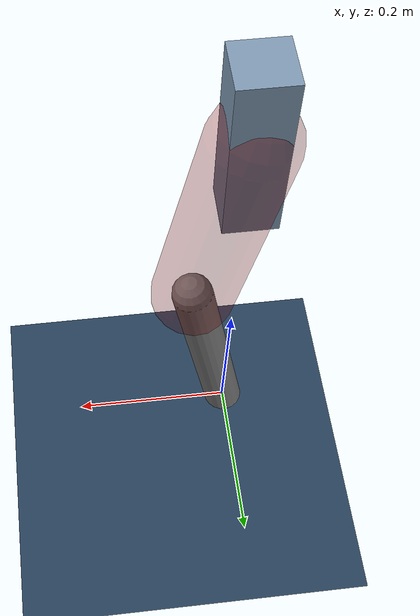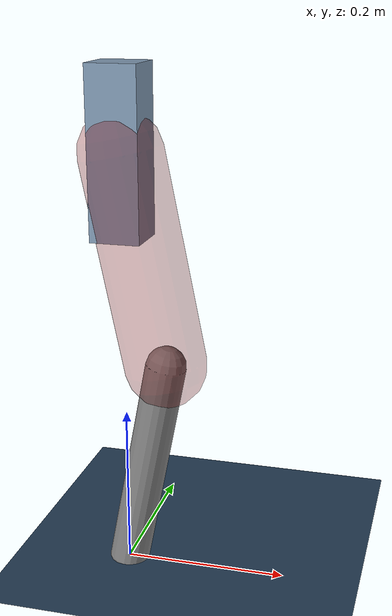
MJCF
<mujoco model="Hopper2D">
	<compiler inertiafromgeom="true" angle="radian" />
	<option timestep="0.001" integrator="implicit" cone="elliptic" solver="Newton" tolerance="1e-10" />

	<default>
		<geom contype="1" conaffinity="1" condim="3" friction="2 0.005 0.0001" solref="0.005 1" />
		<joint limited="true" damping="0.1" />
	</default>

	<asset>
		<texture name="skybox" type="skybox" builtin="gradient" rgb1=".4 .6 .8" rgb2="0 0 0" width="800" height="800" />
		<texture name="grid" type="2d" builtin="checker" rgb1=".1 .2 .3" rgb2=".2 .3 .4" width="300" height="300" mark="edge" markrgb=".2 .3 .4" />
		<material name="ground" texture="grid" texrepeat="1 1" texuniform="true" reflectance="0.1" />
		<material name="leg" rgba="0.5 0.6 0.7 1" />
	</asset>

	<worldbody>

		<geom name="floor" type="plane" size="5 5 0.25" material="ground" />

		<light directional="false" diffuse="0.8 0.8 0.8" specular="0.3 0.3 0.3" pos="0 0 2" dir="0 0 -1" />
		<light mode="targetbodycom" target="base" directional="false" diffuse="0.8 0.8 0.8" specular="0.3 0.3 0.3" pos="0 0 2" dir="0 0 -1" />

		<camera name="fixed" pos="0 -2 1" xyaxes="1 0 0 0 0 1" />
		<camera name="tracking" mode="trackcom" pos="0 -3 1" />

		<body name="root" pos="0 0 0.5204052679878222">
			<joint name="slide_x" type="slide" axis="1 0 0" range="-100 100" />
			<joint name="slide_z" type="slide" axis="0 0 1" range="0 10" />

			<body name="base" pos="0 0 0">
				<geom name="torso" type="box" size="0.03 0.03 0.1" mass="2.8869999999999996" material="leg" />

				<body name="link1" pos="0 0 0" euler="0 1.3719892492823094 0">
					<joint type="hinge" axis="0 -1 0" pos="0 0 0" name="hinge1" limited="true" range="-3.14 3.14" stiffness="0" damping="0.1" />
					<geom name="thigh" type="capsule" fromto="0 0 0 0.25945316103432453 0 0" size="0.05" rgba="0.5 0 0 0.3" mass="0.8809782186892438" />

					<body name="link2" pos="0.25945316103432453 0 0" euler="0 0.38907127853006634 0">
						<joint type="hinge" axis="0 -1 0" pos="0 0 0" name="hinge2" limited="true" range="-3.14 3.14" stiffness="0" damping="0.1" />
						<geom name="shank" type="capsule" fromto="0 0 0 0.2709521069534976 0 0" size="0.025" mass="0.4597568962581478" />

					</body>
				</body>
			</body>
		</body>
	</worldbody>

	<actuator>
		<motor name="torque1" joint="hinge1" ctrlrange="-159.48267589374169 159.48267589374169" ctrllimited="true" gear="1" />
		<motor name="torque2" joint="hinge2" ctrlrange="-62.24004183056815 62.24004183056815" ctrllimited="true" gear="1" />
	</actuator>
</mujoco>
